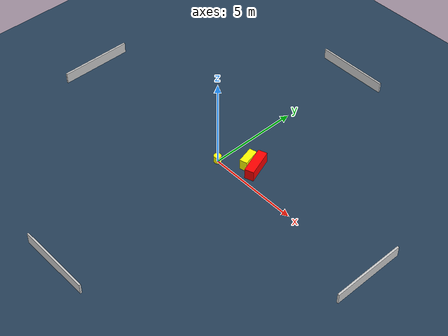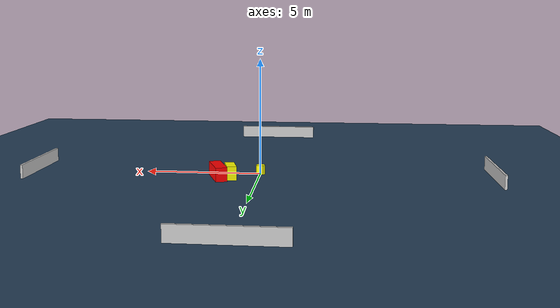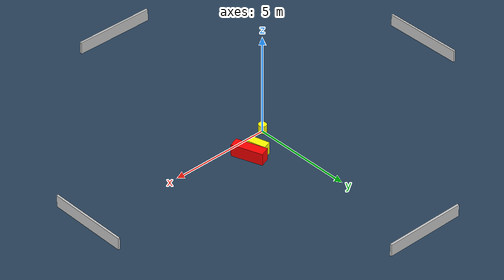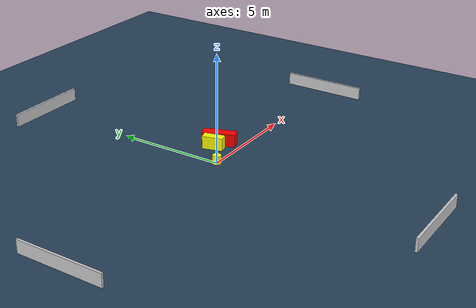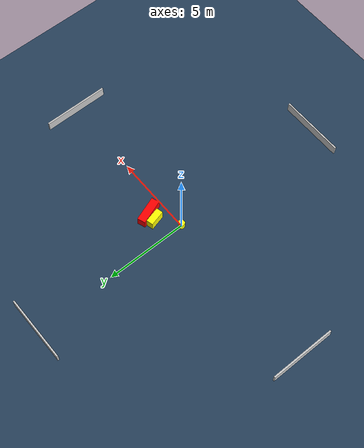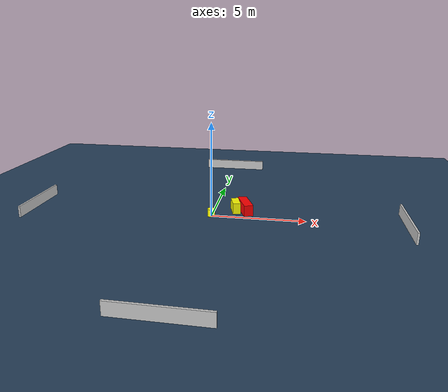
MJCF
<?xml version="1.0" ?>
<mujoco model="generated_environment">
  <option timestep="0.01" integrator="RK4" cone="elliptic"/>
  <default>
    <geom density="1"/>
  </default>
  <asset>
    <texture builtin="gradient" height="3072" name="skybox" rgb1="0.3 0.5 0.7" rgb2="0 0 0" type="skybox" width="512"/>
    <texture builtin="checker" height="300" name="groundplane" rgb1="0.2 0.3 0.4" rgb2="0.1 0.2 0.3" type="2d" width="300"/>
    <material name="groundplane" reflectance="0.2" texrepeat="5 5" texture="groundplane"/>
  </asset>
  <worldbody>
    <light dir="0 0 -1" directional="true" pos="0 0 1.5"/>
    <geom condim="3" friction="0.5 0.005 0.001" material="groundplane" name="floor" pos="0 0 0" size="0 0 0.05" type="plane"/>
    <body name="walls">
      <geom name="wall_1" condim="4" pos="-10.0 0.0 0.3" rgba="0.800000011920929 0.800000011920929 0.800000011920929 1.0" size="0.05 2.0 0.3" type="box"/>
      <geom name="wall_2" condim="4" pos="10.0 0.0 0.3" rgba="0.800000011920929 0.800000011920929 0.800000011920929 1.0" size="0.05 2.0 0.3" type="box"/>
      <geom name="wall_3" condim="4" pos="0.0 -10.0 0.3" rgba="0.800000011920929 0.800000011920929 0.800000011920929 1.0" size="2.0 0.05 0.3" type="box"/>
      <geom name="wall_4" condim="4" pos="0.0 10.0 0.3" rgba="0.800000011920929 0.800000011920929 0.800000011920929 1.0" size="2.0 0.05 0.3" type="box"/>
    </body>
    <body name="robot">
      <joint name="joint_x" type="slide" pos="0 0 0" axis="1 0 0"/>
      <joint name="joint_y" type="slide" pos="0 0 0" axis="0 1 0"/>
      <geom name="robot" type="cylinder" pos="0.0 0.0 0.2" size="0.2 0.2 0.0" mass="5.0" friction="1.0 0.005 0.0001" condim="4" rgba="1.0 1.0 0.0 1.0"/>
    </body>
    <body name="obstacle_1_movable">
      <geom name="obstacle_1_movable" condim="4" pos="1.188527854710294 0.9778644769155117 0.3" euler="0 0 284.7354205388962" friction="0.0 0.005 0.001" rgba="1.0 1.0 0.0 1.0" size="0.4788801869260372 0.20714376616502295 0.3" type="box" mass="0.1"/>
      <joint type="free"/>
    </body>
    <body name="obstacle_2_static">
      <geom name="obstacle_2_static" condim="4" pos="1.7168223740087625 1.0056188348731219 0.3" euler="0 0 19.728887229901414" friction="0.0 0.005 0.001" rgba="1.0 0.0 0.0 1.0" size="0.2473232591979807 0.7719628436707839 0.3" type="box"/>
    </body>
  </worldbody>
  <actuator>
    <motor name="actuator_x" joint="joint_x" gear="1" ctrlrange="-1 1"/>
    <motor name="actuator_y" joint="joint_y" gear="1" ctrlrange="-1 1"/>
  </actuator>
</mujoco>
